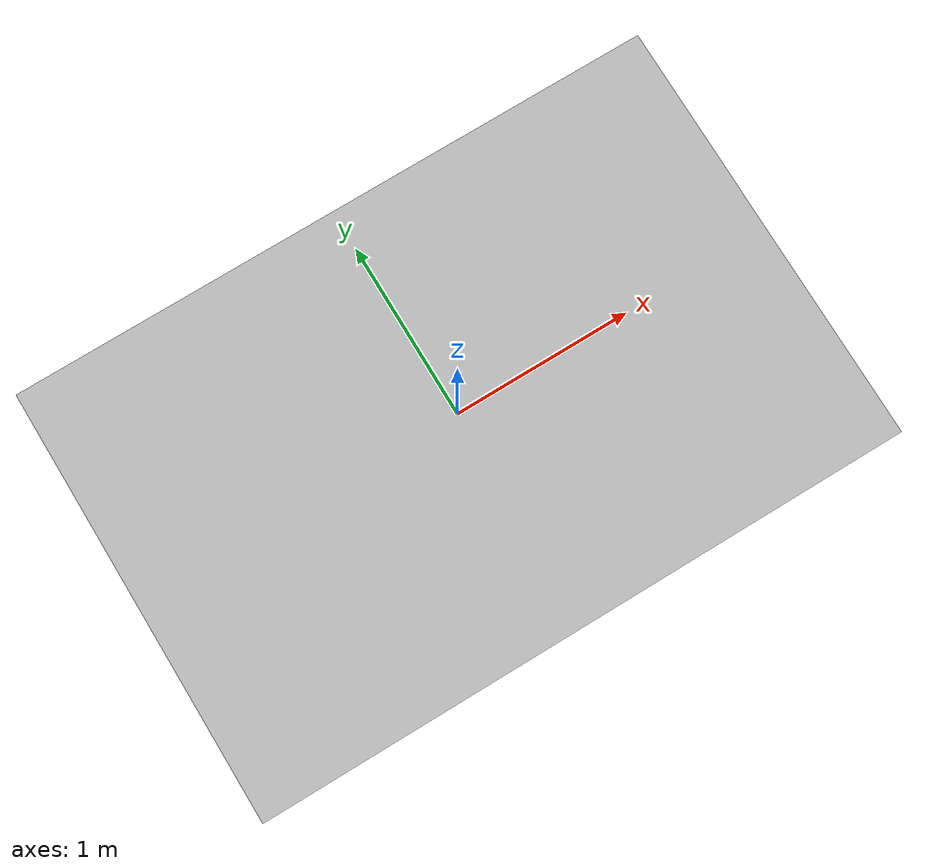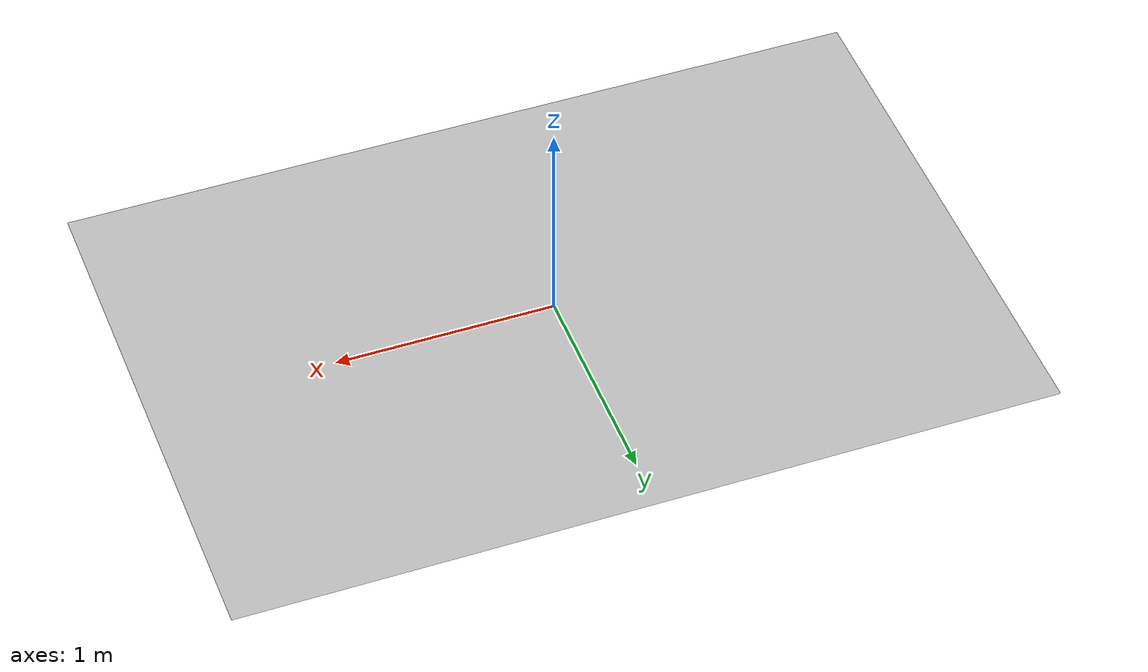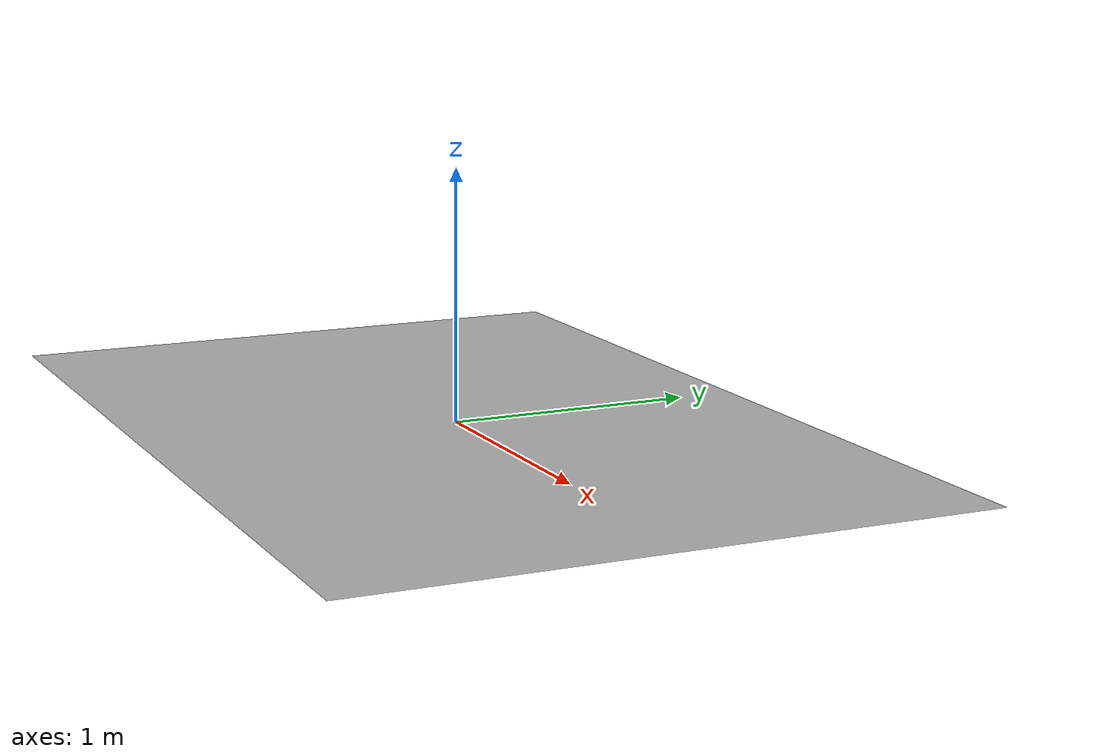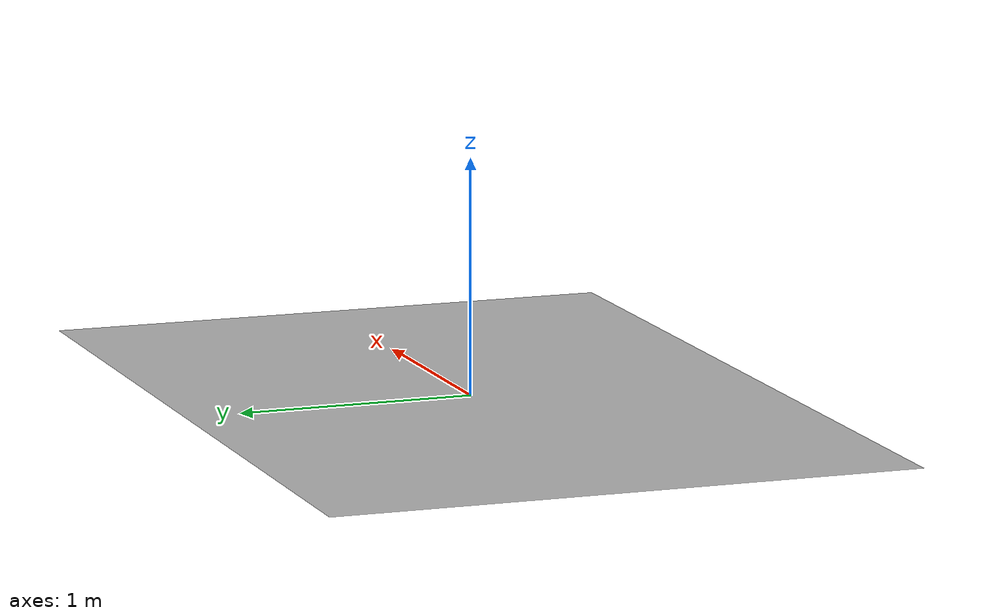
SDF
<?xml version="1.0" ?>
<sdf version="1.5">
  <model name="billboard_2">
    <static>true</static>
      <link name="billboard_2">
        <collision name="billboard-collision">
          <pose>0 0 0 0 0 0</pose>
          <geometry>
            <box>
              <size>0.297 0.42 0.00</size>
            </box>
          </geometry>
        </collision>
        <visual name="billboard-visual">
          <pose>0 0 0 0 0 0</pose>
          <geometry>
            <box>
              <size>3.7 2.47 0.00</size>
            </box>
          </geometry>
          <material>
            <script>
              <uri>model://billboard_2/materials/scripts</uri>
              <uri>model://billboard_2/materials/textures</uri>
              <name>billboard_2/Diffuse</name>
            </script>
          </material>
        </visual>
      </link>
  </model>
</sdf>
